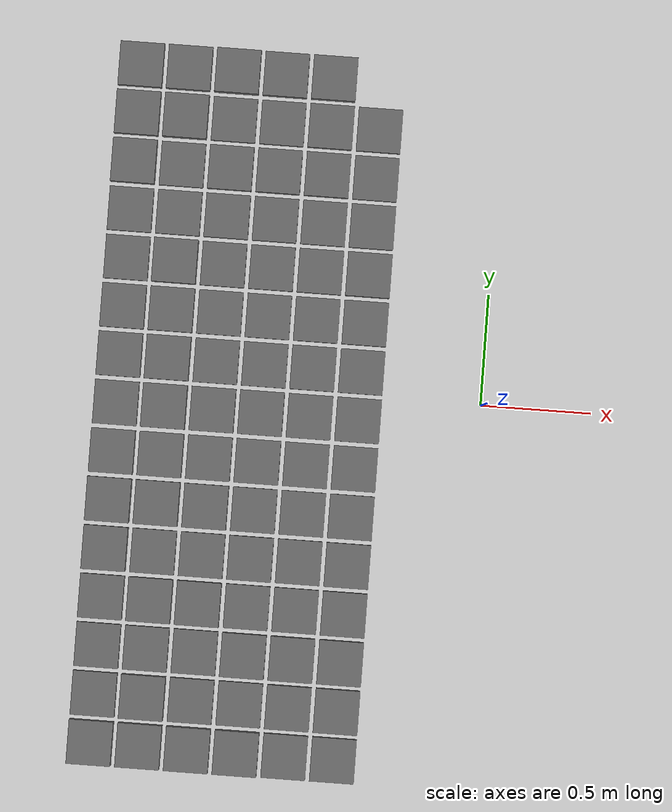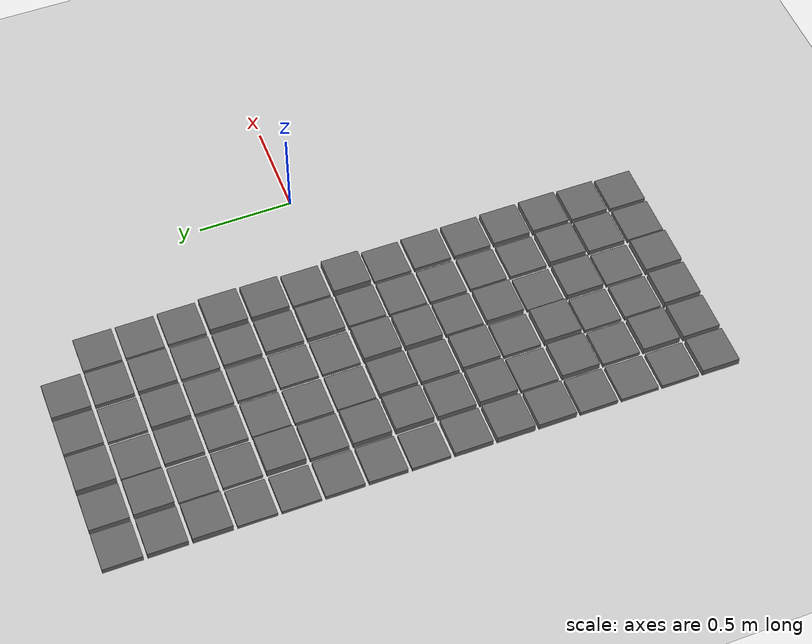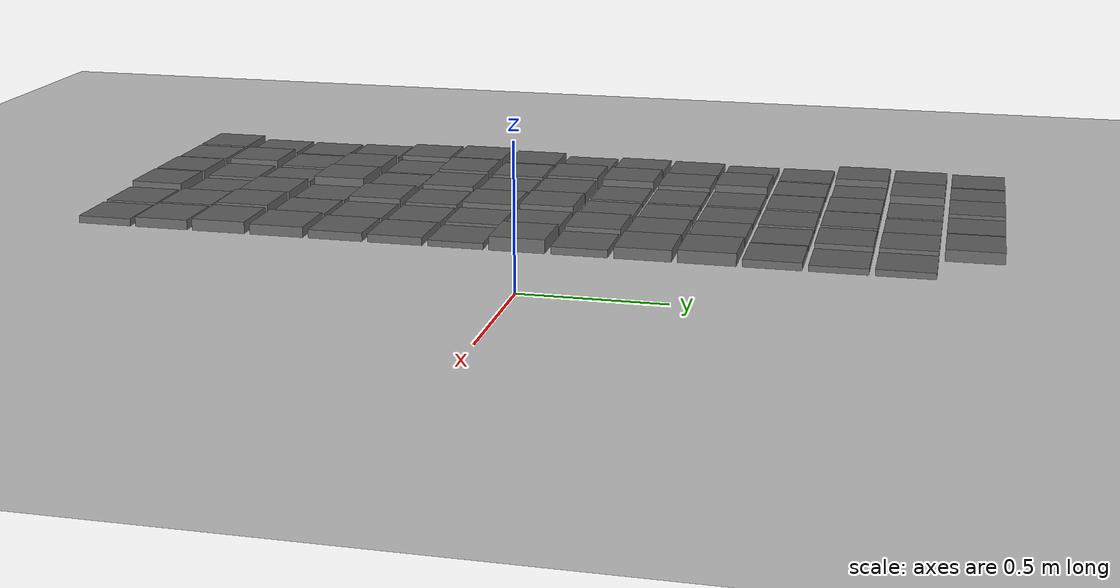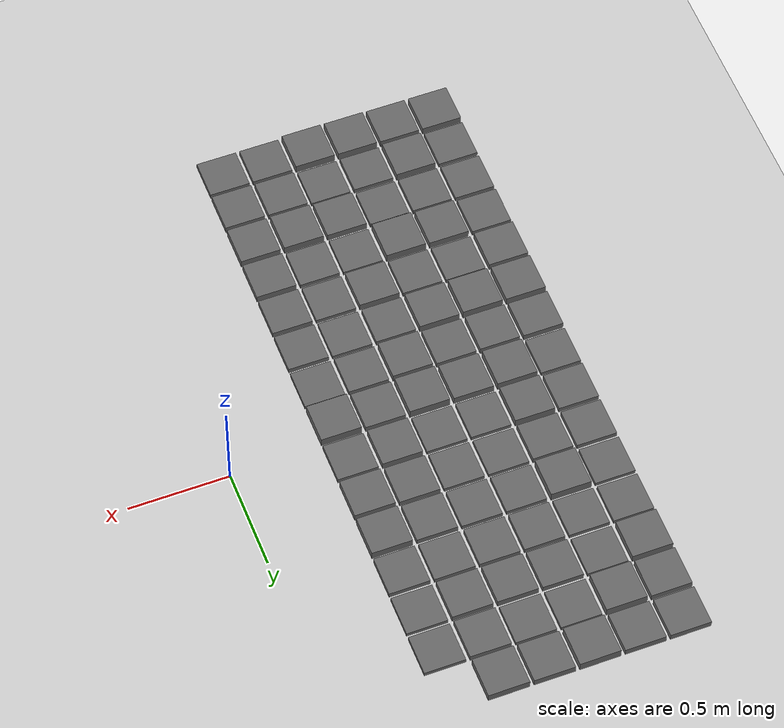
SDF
<sdf version="1.7">
 <world name="default">
  <model name="ground_plane">
   <static>1</static>
   <link name="link">
    <collision name="collision">
     <geometry><plane><normal>0 0 1</normal><size>100 100</size></plane></geometry>
     <surface>
      <contact><collide_bitmask>65535</collide_bitmask></contact>
      <friction><ode><mu>100</mu><mu2>50</mu2></ode></friction>
     </surface>
    </collision>
    <visual name="visual">
     <cast_shadows>0</cast_shadows>
     <geometry><plane><normal>0 0 1</normal><size>100 100</size></plane></geometry>
     <material>
      <script><uri>file://media/materials/scripts/gazebo.material</uri><name>Gazebo/Grey</name></script>
     </material>
    </visual>
   </link>
  </model>
  <model name="terrain_0_0">
   <static>1</static>
   <link name="link">
    <collision name="collision">
     <geometry><box><size>0.2 0.2 0.041049</size></box></geometry>
     <surface><friction><ode><mu>100</mu><mu2>100</mu2></ode></friction></surface>
    </collision>
    <visual name="visual">
     <geometry><box><size>0.2 0.2 0.041049</size></box></geometry>
     <material><ambient>0.4 0.4 0.4 1</ambient></material>
    </visual>
   </link>
   <pose>-1.65 -1.65 0.020525 0 -0 0</pose>
  </model>
  <model name="terrain_0_1">
   <static>1</static>
   <link name="link">
    <collision name="collision">
     <geometry><box><size>0.2 0.2 0.025802</size></box></geometry>
     <surface><friction><ode><mu>100</mu><mu2>100</mu2></ode></friction></surface>
    </collision>
    <visual name="visual">
     <geometry><box><size>0.2 0.2 0.025802</size></box></geometry>
     <material><ambient>0.4 0.4 0.4 1</ambient></material>
    </visual>
   </link>
   <pose>-1.65 -1.43 0.012901 0 -0 0</pose>
  </model>
  <model name="terrain_0_2">
   <static>1</static>
   <link name="link">
    <collision name="collision">
     <geometry><box><size>0.2 0.2 0.024704</size></box></geometry>
     <surface><friction><ode><mu>100</mu><mu2>100</mu2></ode></friction></surface>
    </collision>
    <visual name="visual">
     <geometry><box><size>0.2 0.2 0.024704</size></box></geometry>
     <material><ambient>0.4 0.4 0.4 1</ambient></material>
    </visual>
   </link>
   <pose>-1.65 -1.21 0.012352 0 -0 0</pose>
  </model>
  <model name="terrain_0_3">
   <static>1</static>
   <link name="link">
    <collision name="collision">
     <geometry><box><size>0.2 0.2 0.028086</size></box></geometry>
     <surface><friction><ode><mu>100</mu><mu2>100</mu2></ode></friction></surface>
    </collision>
    <visual name="visual">
     <geometry><box><size>0.2 0.2 0.028086</size></box></geometry>
     <material><ambient>0.4 0.4 0.4 1</ambient></material>
    </visual>
   </link>
   <pose>-1.65 -0.99 0.014043 0 -0 0</pose>
  </model>
  <model name="terrain_0_4">
   <static>1</static>
   <link name="link">
    <collision name="collision">
     <geometry><box><size>0.2 0.2 0.040163</size></box></geometry>
     <surface><friction><ode><mu>100</mu><mu2>100</mu2></ode></friction></surface>
    </collision>
    <visual name="visual">
     <geometry><box><size>0.2 0.2 0.040163</size></box></geometry>
     <material><ambient>0.4 0.4 0.4 1</ambient></material>
    </visual>
   </link>
   <pose>-1.65 -0.77 0.020081 0 -0 0</pose>
  </model>
  <model name="terrain_0_5">
   <static>1</static>
   <link name="link">
    <collision name="collision">
     <geometry><box><size>0.2 0.2 0.045397</size></box></geometry>
     <surface><friction><ode><mu>100</mu><mu2>100</mu2></ode></friction></surface>
    </collision>
    <visual name="visual">
     <geometry><box><size>0.2 0.2 0.045397</size></box></geometry>
     <material><ambient>0.4 0.4 0.4 1</ambient></material>
    </visual>
   </link>
   <pose>-1.65 -0.55 0.022699 0 -0 0</pose>
  </model>
  <model name="terrain_0_6">
   <static>1</static>
   <link name="link">
    <collision name="collision">
     <geometry><box><size>0.2 0.2 0.035923</size></box></geometry>
     <surface><friction><ode><mu>100</mu><mu2>100</mu2></ode></friction></surface>
    </collision>
    <visual name="visual">
     <geometry><box><size>0.2 0.2 0.035923</size></box></geometry>
     <material><ambient>0.4 0.4 0.4 1</ambient></material>
    </visual>
   </link>
   <pose>-1.65 -0.33 0.017961 0 -0 0</pose>
  </model>
  <model name="terrain_0_7">
   <static>1</static>
   <link name="link">
    <collision name="collision">
     <geometry><box><size>0.2 0.2 0.023461</size></box></geometry>
     <surface><friction><ode><mu>100</mu><mu2>100</mu2></ode></friction></surface>
    </collision>
    <visual name="visual">
     <geometry><box><size>0.2 0.2 0.023461</size></box></geometry>
     <material><ambient>0.4 0.4 0.4 1</ambient></material>
    </visual>
   </link>
   <pose>-1.65 -0.11 0.011731 0 -0 0</pose>
  </model>
  <model name="terrain_0_8">
   <static>1</static>
   <link name="link">
    <collision name="collision">
     <geometry><box><size>0.2 0.2 0.029653</size></box></geometry>
     <surface><friction><ode><mu>100</mu><mu2>100</mu2></ode></friction></surface>
    </collision>
    <visual name="visual">
     <geometry><box><size>0.2 0.2 0.029653</size></box></geometry>
     <material><ambient>0.4 0.4 0.4 1</ambient></material>
    </visual>
   </link>
   <pose>-1.65 0.11 0.014827 0 -0 0</pose>
  </model>
  <model name="terrain_0_9">
   <static>1</static>
   <link name="link">
    <collision name="collision">
     <geometry><box><size>0.2 0.2 0.027519</size></box></geometry>
     <surface><friction><ode><mu>100</mu><mu2>100</mu2></ode></friction></surface>
    </collision>
    <visual name="visual">
     <geometry><box><size>0.2 0.2 0.027519</size></box></geometry>
     <material><ambient>0.4 0.4 0.4 1</ambient></material>
    </visual>
   </link>
   <pose>-1.65 0.33 0.013759 0 -0 0</pose>
  </model>
  <model name="terrain_0_10">
   <static>1</static>
   <link name="link">
    <collision name="collision">
     <geometry><box><size>0.2 0.2 0.021272</size></box></geometry>
     <surface><friction><ode><mu>100</mu><mu2>100</mu2></ode></friction></surface>
    </collision>
    <visual name="visual">
     <geometry><box><size>0.2 0.2 0.021272</size></box></geometry>
     <material><ambient>0.4 0.4 0.4 1</ambient></material>
    </visual>
   </link>
   <pose>-1.65 0.55 0.010636 0 -0 0</pose>
  </model>
  <model name="terrain_0_11">
   <static>1</static>
   <link name="link">
    <collision name="collision">
     <geometry><box><size>0.2 0.2 0.022224</size></box></geometry>
     <surface><friction><ode><mu>100</mu><mu2>100</mu2></ode></friction></surface>
    </collision>
    <visual name="visual">
     <geometry><box><size>0.2 0.2 0.022224</size></box></geometry>
     <material><ambient>0.4 0.4 0.4 1</ambient></material>
    </visual>
   </link>
   <pose>-1.65 0.77 0.011112 0 -0 0</pose>
  </model>
  <model name="terrain_0_12">
   <static>1</static>
   <link name="link">
    <collision name="collision">
     <geometry><box><size>0.2 0.2 0.042869</size></box></geometry>
     <surface><friction><ode><mu>100</mu><mu2>100</mu2></ode></friction></surface>
    </collision>
    <visual name="visual">
     <geometry><box><size>0.2 0.2 0.042869</size></box></geometry>
     <material><ambient>0.4 0.4 0.4 1</ambient></material>
    </visual>
   </link>
   <pose>-1.65 0.99 0.021434 0 -0 0</pose>
  </model>
  <model name="terrain_0_13">
   <static>1</static>
   <link name="link">
    <collision name="collision">
     <geometry><box><size>0.2 0.2 0.038145</size></box></geometry>
     <surface><friction><ode><mu>100</mu><mu2>100</mu2></ode></friction></surface>
    </collision>
    <visual name="visual">
     <geometry><box><size>0.2 0.2 0.038145</size></box></geometry>
     <material><ambient>0.4 0.4 0.4 1</ambient></material>
    </visual>
   </link>
   <pose>-1.65 1.21 0.019072 0 -0 0</pose>
  </model>
  <model name="terrain_0_14">
   <static>1</static>
   <link name="link">
    <collision name="collision">
     <geometry><box><size>0.2 0.2 0.033636</size></box></geometry>
     <surface><friction><ode><mu>100</mu><mu2>100</mu2></ode></friction></surface>
    </collision>
    <visual name="visual">
     <geometry><box><size>0.2 0.2 0.033636</size></box></geometry>
     <material><ambient>0.4 0.4 0.4 1</ambient></material>
    </visual>
   </link>
   <pose>-1.65 1.43 0.016818 0 -0 0</pose>
  </model>
  <model name="terrain_1_0">
   <static>1</static>
   <link name="link">
    <collision name="collision">
     <geometry><box><size>0.2 0.2 0.040639</size></box></geometry>
     <surface><friction><ode><mu>100</mu><mu2>100</mu2></ode></friction></surface>
    </collision>
    <visual name="visual">
     <geometry><box><size>0.2 0.2 0.040639</size></box></geometry>
     <material><ambient>0.4 0.4 0.4 1</ambient></material>
    </visual>
   </link>
   <pose>-1.43 -1.65 0.02032 0 -0 0</pose>
  </model>
  <model name="terrain_1_1">
   <static>1</static>
   <link name="link">
    <collision name="collision">
     <geometry><box><size>0.2 0.2 0.044424</size></box></geometry>
     <surface><friction><ode><mu>100</mu><mu2>100</mu2></ode></friction></surface>
    </collision>
    <visual name="visual">
     <geometry><box><size>0.2 0.2 0.044424</size></box></geometry>
     <material><ambient>0.4 0.4 0.4 1</ambient></material>
    </visual>
   </link>
   <pose>-1.43 -1.43 0.022212 0 -0 0</pose>
  </model>
  <model name="terrain_1_2">
   <static>1</static>
   <link name="link">
    <collision name="collision">
     <geometry><box><size>0.2 0.2 0.026957</size></box></geometry>
     <surface><friction><ode><mu>100</mu><mu2>100</mu2></ode></friction></surface>
    </collision>
    <visual name="visual">
     <geometry><box><size>0.2 0.2 0.026957</size></box></geometry>
     <material><ambient>0.4 0.4 0.4 1</ambient></material>
    </visual>
   </link>
   <pose>-1.43 -1.21 0.013478 0 -0 0</pose>
  </model>
  <model name="terrain_1_3">
   <static>1</static>
   <link name="link">
    <collision name="collision">
     <geometry><box><size>0.2 0.2 0.042876</size></box></geometry>
     <surface><friction><ode><mu>100</mu><mu2>100</mu2></ode></friction></surface>
    </collision>
    <visual name="visual">
     <geometry><box><size>0.2 0.2 0.042876</size></box></geometry>
     <material><ambient>0.4 0.4 0.4 1</ambient></material>
    </visual>
   </link>
   <pose>-1.43 -0.99 0.021438 0 -0 0</pose>
  </model>
  <model name="terrain_1_4">
   <static>1</static>
   <link name="link">
    <collision name="collision">
     <geometry><box><size>0.2 0.2 0.025004</size></box></geometry>
     <surface><friction><ode><mu>100</mu><mu2>100</mu2></ode></friction></surface>
    </collision>
    <visual name="visual">
     <geometry><box><size>0.2 0.2 0.025004</size></box></geometry>
     <material><ambient>0.4 0.4 0.4 1</ambient></material>
    </visual>
   </link>
   <pose>-1.43 -0.77 0.012502 0 -0 0</pose>
  </model>
  <model name="terrain_1_5">
   <static>1</static>
   <link name="link">
    <collision name="collision">
     <geometry><box><size>0.2 0.2 0.048702</size></box></geometry>
     <surface><friction><ode><mu>100</mu><mu2>100</mu2></ode></friction></surface>
    </collision>
    <visual name="visual">
     <geometry><box><size>0.2 0.2 0.048702</size></box></geometry>
     <material><ambient>0.4 0.4 0.4 1</ambient></material>
    </visual>
   </link>
   <pose>-1.43 -0.55 0.024351 0 -0 0</pose>
  </model>
  <model name="terrain_1_6">
   <static>1</static>
   <link name="link">
    <collision name="collision">
     <geometry><box><size>0.2 0.2 0.03822</size></box></geometry>
     <surface><friction><ode><mu>100</mu><mu2>100</mu2></ode></friction></surface>
    </collision>
    <visual name="visual">
     <geometry><box><size>0.2 0.2 0.03822</size></box></geometry>
     <material><ambient>0.4 0.4 0.4 1</ambient></material>
    </visual>
   </link>
   <pose>-1.43 -0.33 0.01911 0 -0 0</pose>
  </model>
  <model name="terrain_1_7">
   <static>1</static>
   <link name="link">
    <collision name="collision">
     <geometry><box><size>0.2 0.2 0.047859</size></box></geometry>
     <surface><friction><ode><mu>100</mu><mu2>100</mu2></ode></friction></surface>
    </collision>
    <visual name="visual">
     <geometry><box><size>0.2 0.2 0.047859</size></box></geometry>
     <material><ambient>0.4 0.4 0.4 1</ambient></material>
    </visual>
   </link>
   <pose>-1.43 -0.11 0.02393 0 -0 0</pose>
  </model>
  <model name="terrain_1_8">
   <static>1</static>
   <link name="link">
    <collision name="collision">
     <geometry><box><size>0.2 0.2 0.045117</size></box></geometry>
     <surface><friction><ode><mu>100</mu><mu2>100</mu2></ode></friction></surface>
    </collision>
    <visual name="visual">
     <geometry><box><size>0.2 0.2 0.045117</size></box></geometry>
     <material><ambient>0.4 0.4 0.4 1</ambient></material>
    </visual>
   </link>
   <pose>-1.43 0.11 0.022558 0 -0 0</pose>
  </model>
  <model name="terrain_1_9">
   <static>1</static>
   <link name="link">
    <collision name="collision">
     <geometry><box><size>0.2 0.2 0.033731</size></box></geometry>
     <surface><friction><ode><mu>100</mu><mu2>100</mu2></ode></friction></surface>
    </collision>
    <visual name="visual">
     <geometry><box><size>0.2 0.2 0.033731</size></box></geometry>
     <material><ambient>0.4 0.4 0.4 1</ambient></material>
    </visual>
   </link>
   <pose>-1.43 0.33 0.016866 0 -0 0</pose>
  </model>
  <model name="terrain_1_10">
   <static>1</static>
   <link name="link">
    <collision name="collision">
     <geometry><box><size>0.2 0.2 0.04955</size></box></geometry>
     <surface><friction><ode><mu>100</mu><mu2>100</mu2></ode></friction></surface>
    </collision>
    <visual name="visual">
     <geometry><box><size>0.2 0.2 0.04955</size></box></geometry>
     <material><ambient>0.4 0.4 0.4 1</ambient></material>
    </visual>
   </link>
   <pose>-1.43 0.55 0.024775 0 -0 0</pose>
  </model>
  <model name="terrain_1_11">
   <static>1</static>
   <link name="link">
    <collision name="collision">
     <geometry><box><size>0.2 0.2 0.023592</size></box></geometry>
     <surface><friction><ode><mu>100</mu><mu2>100</mu2></ode></friction></surface>
    </collision>
    <visual name="visual">
     <geometry><box><size>0.2 0.2 0.023592</size></box></geometry>
     <material><ambient>0.4 0.4 0.4 1</ambient></material>
    </visual>
   </link>
   <pose>-1.43 0.77 0.011796 0 -0 0</pose>
  </model>
  <model name="terrain_1_12">
   <static>1</static>
   <link name="link">
    <collision name="collision">
     <geometry><box><size>0.2 0.2 0.020867</size></box></geometry>
     <surface><friction><ode><mu>100</mu><mu2>100</mu2></ode></friction></surface>
    </collision>
    <visual name="visual">
     <geometry><box><size>0.2 0.2 0.020867</size></box></geometry>
     <material><ambient>0.4 0.4 0.4 1</ambient></material>
    </visual>
   </link>
   <pose>-1.43 0.99 0.010434 0 -0 0</pose>
  </model>
  <model name="terrain_1_13">
   <static>1</static>
   <link name="link">
    <collision name="collision">
     <geometry><box><size>0.2 0.2 0.046326</size></box></geometry>
     <surface><friction><ode><mu>100</mu><mu2>100</mu2></ode></friction></surface>
    </collision>
    <visual name="visual">
     <geometry><box><size>0.2 0.2 0.046326</size></box></geometry>
     <material><ambient>0.4 0.4 0.4 1</ambient></material>
    </visual>
   </link>
   <pose>-1.43 1.21 0.023163 0 -0 0</pose>
  </model>
  <model name="terrain_1_14">
   <static>1</static>
   <link name="link">
    <collision name="collision">
     <geometry><box><size>0.2 0.2 0.036003</size></box></geometry>
     <surface><friction><ode><mu>100</mu><mu2>100</mu2></ode></friction></surface>
    </collision>
    <visual name="visual">
     <geometry><box><size>0.2 0.2 0.036003</size></box></geometry>
     <material><ambient>0.4 0.4 0.4 1</ambient></material>
    </visual>
   </link>
   <pose>-1.43 1.43 0.018002 0 -0 0</pose>
  </model>
  <model name="terrain_2_0">
   <static>1</static>
   <link name="link">
    <collision name="collision">
     <geometry><box><size>0.2 0.2 0.044477</size></box></geometry>
     <surface><friction><ode><mu>100</mu><mu2>100</mu2></ode></friction></surface>
    </collision>
    <visual name="visual">
     <geometry><box><size>0.2 0.2 0.044477</size></box></geometry>
     <material><ambient>0.4 0.4 0.4 1</ambient></material>
    </visual>
   </link>
   <pose>-1.21 -1.65 0.022238 0 -0 0</pose>
  </model>
  <model name="terrain_2_1">
   <static>1</static>
   <link name="link">
    <collision name="collision">
     <geometry><box><size>0.2 0.2 0.027828</size></box></geometry>
     <surface><friction><ode><mu>100</mu><mu2>100</mu2></ode></friction></surface>
    </collision>
    <visual name="visual">
     <geometry><box><size>0.2 0.2 0.027828</size></box></geometry>
     <material><ambient>0.4 0.4 0.4 1</ambient></material>
    </visual>
   </link>
   <pose>-1.21 -1.43 0.013914 0 -0 0</pose>
  </model>
  <model name="terrain_2_2">
   <static>1</static>
   <link name="link">
    <collision name="collision">
     <geometry><box><size>0.2 0.2 0.024141</size></box></geometry>
     <surface><friction><ode><mu>100</mu><mu2>100</mu2></ode></friction></surface>
    </collision>
    <visual name="visual">
     <geometry><box><size>0.2 0.2 0.024141</size></box></geometry>
     <material><ambient>0.4 0.4 0.4 1</ambient></material>
    </visual>
   </link>
   <pose>-1.21 -1.21 0.01207 0 -0 0</pose>
  </model>
  <model name="terrain_2_3">
   <static>1</static>
   <link name="link">
    <collision name="collision">
     <geometry><box><size>0.2 0.2 0.04896</size></box></geometry>
     <surface><friction><ode><mu>100</mu><mu2>100</mu2></ode></friction></surface>
    </collision>
    <visual name="visual">
     <geometry><box><size>0.2 0.2 0.04896</size></box></geometry>
     <material><ambient>0.4 0.4 0.4 1</ambient></material>
    </visual>
   </link>
   <pose>-1.21 -0.99 0.02448 0 -0 0</pose>
  </model>
  <model name="terrain_2_4">
   <static>1</static>
   <link name="link">
    <collision name="collision">
     <geometry><box><size>0.2 0.2 0.026443</size></box></geometry>
     <surface><friction><ode><mu>100</mu><mu2>100</mu2></ode></friction></surface>
    </collision>
    <visual name="visual">
     <geometry><box><size>0.2 0.2 0.026443</size></box></geometry>
     <material><ambient>0.4 0.4 0.4 1</ambient></material>
    </visual>
   </link>
   <pose>-1.21 -0.77 0.013222 0 -0 0</pose>
  </model>
  <model name="terrain_2_5">
   <static>1</static>
   <link name="link">
    <collision name="collision">
     <geometry><box><size>0.2 0.2 0.042426</size></box></geometry>
     <surface><friction><ode><mu>100</mu><mu2>100</mu2></ode></friction></surface>
    </collision>
    <visual name="visual">
     <geometry><box><size>0.2 0.2 0.042426</size></box></geometry>
     <material><ambient>0.4 0.4 0.4 1</ambient></material>
    </visual>
   </link>
   <pose>-1.21 -0.55 0.021213 0 -0 0</pose>
  </model>
  <model name="terrain_2_6">
   <static>1</static>
   <link name="link">
    <collision name="collision">
     <geometry><box><size>0.2 0.2 0.032356</size></box></geometry>
     <surface><friction><ode><mu>100</mu><mu2>100</mu2></ode></friction></surface>
    </collision>
    <visual name="visual">
     <geometry><box><size>0.2 0.2 0.032356</size></box></geometry>
     <material><ambient>0.4 0.4 0.4 1</ambient></material>
    </visual>
   </link>
   <pose>-1.21 -0.33 0.016178 0 -0 0</pose>
  </model>
  <model name="terrain_2_7">
   <static>1</static>
   <link name="link">
    <collision name="collision">
     <geometry><box><size>0.2 0.2 0.042514</size></box></geometry>
     <surface><friction><ode><mu>100</mu><mu2>100</mu2></ode></friction></surface>
    </collision>
    <visual name="visual">
     <geometry><box><size>0.2 0.2 0.042514</size></box></geometry>
     <material><ambient>0.4 0.4 0.4 1</ambient></material>
    </visual>
   </link>
   <pose>-1.21 -0.11 0.021257 0 -0 0</pose>
  </model>
  <model name="terrain_2_8">
   <static>1</static>
   <link name="link">
    <collision name="collision">
     <geometry><box><size>0.2 0.2 0.023404</size></box></geometry>
     <surface><friction><ode><mu>100</mu><mu2>100</mu2></ode></friction></surface>
    </collision>
    <visual name="visual">
     <geometry><box><size>0.2 0.2 0.023404</size></box></geometry>
     <material><ambient>0.4 0.4 0.4 1</ambient></material>
    </visual>
   </link>
   <pose>-1.21 0.11 0.011702 0 -0 0</pose>
  </model>
  <model name="terrain_2_9">
   <static>1</static>
   <link name="link">
    <collision name="collision">
     <geometry><box><size>0.2 0.2 0.022468</size></box></geometry>
     <surface><friction><ode><mu>100</mu><mu2>100</mu2></ode></friction></surface>
    </collision>
    <visual name="visual">
     <geometry><box><size>0.2 0.2 0.022468</size></box></geometry>
     <material><ambient>0.4 0.4 0.4 1</ambient></material>
    </visual>
   </link>
   <pose>-1.21 0.33 0.011234 0 -0 0</pose>
  </model>
  <model name="terrain_2_10">
   <static>1</static>
   <link name="link">
    <collision name="collision">
     <geometry><box><size>0.2 0.2 0.025677</size></box></geometry>
     <surface><friction><ode><mu>100</mu><mu2>100</mu2></ode></friction></surface>
    </collision>
    <visual name="visual">
     <geometry><box><size>0.2 0.2 0.025677</size></box></geometry>
     <material><ambient>0.4 0.4 0.4 1</ambient></material>
    </visual>
   </link>
   <pose>-1.21 0.55 0.012838 0 -0 0</pose>
  </model>
  <model name="terrain_2_11">
   <static>1</static>
   <link name="link">
    <collision name="collision">
     <geometry><box><size>0.2 0.2 0.027745</size></box></geometry>
     <surface><friction><ode><mu>100</mu><mu2>100</mu2></ode></friction></surface>
    </collision>
    <visual name="visual">
     <geometry><box><size>0.2 0.2 0.027745</size></box></geometry>
     <material><ambient>0.4 0.4 0.4 1</ambient></material>
    </visual>
   </link>
   <pose>-1.21 0.77 0.013872 0 -0 0</pose>
  </model>
  <model name="terrain_2_12">
   <static>1</static>
   <link name="link">
    <collision name="collision">
     <geometry><box><size>0.2 0.2 0.032543</size></box></geometry>
     <surface><friction><ode><mu>100</mu><mu2>100</mu2></ode></friction></surface>
    </collision>
    <visual name="visual">
     <geometry><box><size>0.2 0.2 0.032543</size></box></geometry>
     <material><ambient>0.4 0.4 0.4 1</ambient></material>
    </visual>
   </link>
   <pose>-1.21 0.99 0.016272 0 -0 0</pose>
  </model>
  <model name="terrain_2_13">
   <static>1</static>
   <link name="link">
    <collision name="collision">
     <geometry><box><size>0.2 0.2 0.021683</size></box></geometry>
     <surface><friction><ode><mu>100</mu><mu2>100</mu2></ode></friction></surface>
    </collision>
    <visual name="visual">
     <geometry><box><size>0.2 0.2 0.021683</size></box></geometry>
     <material><ambient>0.4 0.4 0.4 1</ambient></material>
    </visual>
   </link>
   <pose>-1.21 1.21 0.010842 0 -0 0</pose>
  </model>
  <model name="terrain_2_14">
   <static>1</static>
   <link name="link">
    <collision name="collision">
     <geometry><box><size>0.2 0.2 0.047231</size></box></geometry>
     <surface><friction><ode><mu>100</mu><mu2>100</mu2></ode></friction></surface>
    </collision>
    <visual name="visual">
     <geometry><box><size>0.2 0.2 0.047231</size></box></geometry>
     <material><ambient>0.4 0.4 0.4 1</ambient></material>
    </visual>
   </link>
   <pose>-1.21 1.43 0.023615 0 -0 0</pose>
  </model>
  <model name="terrain_3_0">
   <static>1</static>
   <link name="link">
    <collision name="collision">
     <geometry><box><size>0.2 0.2 0.046595</size></box></geometry>
     <surface><friction><ode><mu>100</mu><mu2>100</mu2></ode></friction></surface>
    </collision>
    <visual name="visual">
     <geometry><box><size>0.2 0.2 0.046595</size></box></geometry>
     <material><ambient>0.4 0.4 0.4 1</ambient></material>
    </visual>
   </link>
   <pose>-0.99 -1.65 0.023297 0 -0 0</pose>
  </model>
  <model name="terrain_3_1">
   <static>1</static>
   <link name="link">
    <collision name="collision">
     <geometry><box><size>0.2 0.2 0.021769</size></box></geometry>
     <surface><friction><ode><mu>100</mu><mu2>100</mu2></ode></friction></surface>
    </collision>
    <visual name="visual">
     <geometry><box><size>0.2 0.2 0.021769</size></box></geometry>
     <material><ambient>0.4 0.4 0.4 1</ambient></material>
    </visual>
   </link>
   <pose>-0.99 -1.43 0.010884 0 -0 0</pose>
  </model>
  <model name="terrain_3_2">
   <static>1</static>
   <link name="link">
    <collision name="collision">
     <geometry><box><size>0.2 0.2 0.040794</size></box></geometry>
     <surface><friction><ode><mu>100</mu><mu2>100</mu2></ode></friction></surface>
    </collision>
    <visual name="visual">
     <geometry><box><size>0.2 0.2 0.040794</size></box></geometry>
     <material><ambient>0.4 0.4 0.4 1</ambient></material>
    </visual>
   </link>
   <pose>-0.99 -1.21 0.020397 0 -0 0</pose>
  </model>
  <model name="terrain_3_3">
   <static>1</static>
   <link name="link">
    <collision name="collision">
     <geometry><box><size>0.2 0.2 0.02101</size></box></geometry>
     <surface><friction><ode><mu>100</mu><mu2>100</mu2></ode></friction></surface>
    </collision>
    <visual name="visual">
     <geometry><box><size>0.2 0.2 0.02101</size></box></geometry>
     <material><ambient>0.4 0.4 0.4 1</ambient></material>
    </visual>
   </link>
   <pose>-0.99 -0.99 0.010505 0 -0 0</pose>
  </model>
  <model name="terrain_3_4">
   <static>1</static>
   <link name="link">
    <collision name="collision">
     <geometry><box><size>0.2 0.2 0.039327</size></box></geometry>
     <surface><friction><ode><mu>100</mu><mu2>100</mu2></ode></friction></surface>
    </collision>
    <visual name="visual">
     <geometry><box><size>0.2 0.2 0.039327</size></box></geometry>
     <material><ambient>0.4 0.4 0.4 1</ambient></material>
    </visual>
   </link>
   <pose>-0.99 -0.77 0.019663 0 -0 0</pose>
  </model>
  <model name="terrain_3_5">
   <static>1</static>
   <link name="link">
    <collision name="collision">
     <geometry><box><size>0.2 0.2 0.029586</size></box></geometry>
     <surface><friction><ode><mu>100</mu><mu2>100</mu2></ode></friction></surface>
    </collision>
    <visual name="visual">
     <geometry><box><size>0.2 0.2 0.029586</size></box></geometry>
     <material><ambient>0.4 0.4 0.4 1</ambient></material>
    </visual>
   </link>
   <pose>-0.99 -0.55 0.014793 0 -0 0</pose>
  </model>
  <model name="terrain_3_6">
   <static>1</static>
   <link name="link">
    <collision name="collision">
     <geometry><box><size>0.2 0.2 0.042922</size></box></geometry>
     <surface><friction><ode><mu>100</mu><mu2>100</mu2></ode></friction></surface>
    </collision>
    <visual name="visual">
     <geometry><box><size>0.2 0.2 0.042922</size></box></geometry>
     <material><ambient>0.4 0.4 0.4 1</ambient></material>
    </visual>
   </link>
   <pose>-0.99 -0.33 0.021461 0 -0 0</pose>
  </model>
  <model name="terrain_3_7">
   <static>1</static>
   <link name="link">
    <collision name="collision">
     <geometry><box><size>0.2 0.2 0.0495</size></box></geometry>
     <surface><friction><ode><mu>100</mu><mu2>100</mu2></ode></friction></surface>
    </collision>
    <visual name="visual">
     <geometry><box><size>0.2 0.2 0.0495</size></box></geometry>
     <material><ambient>0.4 0.4 0.4 1</ambient></material>
    </visual>
   </link>
   <pose>-0.99 -0.11 0.02475 0 -0 0</pose>
  </model>
  <model name="terrain_3_8">
   <static>1</static>
   <link name="link">
    <collision name="collision">
     <geometry><box><size>0.2 0.2 0.022192</size></box></geometry>
     <surface><friction><ode><mu>100</mu><mu2>100</mu2></ode></friction></surface>
    </collision>
    <visual name="visual">
     <geometry><box><size>0.2 0.2 0.022192</size></box></geometry>
     <material><ambient>0.4 0.4 0.4 1</ambient></material>
    </visual>
   </link>
   <pose>-0.99 0.11 0.011096 0 -0 0</pose>
  </model>
  <model name="terrain_3_9">
   <static>1</static>
   <link name="link">
    <collision name="collision">
     <geometry><box><size>0.2 0.2 0.023127</size></box></geometry>
     <surface><friction><ode><mu>100</mu><mu2>100</mu2></ode></friction></surface>
    </collision>
    <visual name="visual">
     <geometry><box><size>0.2 0.2 0.023127</size></box></geometry>
     <material><ambient>0.4 0.4 0.4 1</ambient></material>
    </visual>
   </link>
   <pose>-0.99 0.33 0.011563 0 -0 0</pose>
  </model>
  <model name="terrain_3_10">
   <static>1</static>
   <link name="link">
    <collision name="collision">
     <geometry><box><size>0.2 0.2 0.025767</size></box></geometry>
     <surface><friction><ode><mu>100</mu><mu2>100</mu2></ode></friction></surface>
    </collision>
    <visual name="visual">
     <geometry><box><size>0.2 0.2 0.025767</size></box></geometry>
     <material><ambient>0.4 0.4 0.4 1</ambient></material>
    </visual>
   </link>
   <pose>-0.99 0.55 0.012884 0 -0 0</pose>
  </model>
  <model name="terrain_3_11">
   <static>1</static>
   <link name="link">
    <collision name="collision">
     <geometry><box><size>0.2 0.2 0.027007</size></box></geometry>
     <surface><friction><ode><mu>100</mu><mu2>100</mu2></ode></friction></surface>
    </collision>
    <visual name="visual">
     <geometry><box><size>0.2 0.2 0.027007</size></box></geometry>
     <material><ambient>0.4 0.4 0.4 1</ambient></material>
    </visual>
   </link>
   <pose>-0.99 0.77 0.013503 0 -0 0</pose>
  </model>
  <model name="terrain_3_12">
   <static>1</static>
   <link name="link">
    <collision name="collision">
     <geometry><box><size>0.2 0.2 0.037068</size></box></geometry>
     <surface><friction><ode><mu>100</mu><mu2>100</mu2></ode></friction></surface>
    </collision>
    <visual name="visual">
     <geometry><box><size>0.2 0.2 0.037068</size></box></geometry>
     <material><ambient>0.4 0.4 0.4 1</ambient></material>
    </visual>
   </link>
   <pose>-0.99 0.99 0.018534 0 -0 0</pose>
  </model>
  <model name="terrain_3_13">
   <static>1</static>
   <link name="link">
    <collision name="collision">
     <geometry><box><size>0.2 0.2 0.022132</size></box></geometry>
     <surface><friction><ode><mu>100</mu><mu2>100</mu2></ode></friction></surface>
    </collision>
    <visual name="visual">
     <geometry><box><size>0.2 0.2 0.022132</size></box></geometry>
     <material><ambient>0.4 0.4 0.4 1</ambient></material>
    </visual>
   </link>
   <pose>-0.99 1.21 0.011066 0 -0 0</pose>
  </model>
  <model name="terrain_3_14">
   <static>1</static>
   <link name="link">
    <collision name="collision">
     <geometry><box><size>0.2 0.2 0.038272</size></box></geometry>
     <surface><friction><ode><mu>100</mu><mu2>100</mu2></ode></friction></surface>
    </collision>
    <visual name="visual">
     <geometry><box><size>0.2 0.2 0.038272</size></box></geometry>
     <material><ambient>0.4 0.4 0.4 1</ambient></material>
    </visual>
   </link>
   <pose>-0.99 1.43 0.019136 0 -0 0</pose>
  </model>
  <model name="terrain_4_0">
   <static>1</static>
   <link name="link">
    <collision name="collision">
     <geometry><box><size>0.2 0.2 0.02844</size></box></geometry>
     <surface><friction><ode><mu>100</mu><mu2>100</mu2></ode></friction></surface>
    </collision>
    <visual name="visual">
     <geometry><box><size>0.2 0.2 0.02844</size></box></geometry>
     <material><ambient>0.4 0.4 0.4 1</ambient></material>
    </visual>
   </link>
   <pose>-0.77 -1.65 0.01422 0 -0 0</pose>
  </model>
  <model name="terrain_4_1">
   <static>1</static>
   <link name="link">
    <collision name="collision">
     <geometry><box><size>0.2 0.2 0.034988</size></box></geometry>
     <surface><friction><ode><mu>100</mu><mu2>100</mu2></ode></friction></surface>
    </collision>
    <visual name="visual">
     <geometry><box><size>0.2 0.2 0.034988</size></box></geometry>
     <material><ambient>0.4 0.4 0.4 1</ambient></material>
    </visual>
   </link>
   <pose>-0.77 -1.43 0.017494 0 -0 0</pose>
  </model>
  <model name="terrain_4_2">
   <static>1</static>
   <link name="link">
    <collision name="collision">
     <geometry><box><size>0.2 0.2 0.046463</size></box></geometry>
     <surface><friction><ode><mu>100</mu><mu2>100</mu2></ode></friction></surface>
    </collision>
    <visual name="visual">
     <geometry><box><size>0.2 0.2 0.046463</size></box></geometry>
     <material><ambient>0.4 0.4 0.4 1</ambient></material>
    </visual>
   </link>
   <pose>-0.77 -1.21 0.023232 0 -0 0</pose>
  </model>
  <model name="terrain_4_3">
   <static>1</static>
   <link name="link">
    <collision name="collision">
     <geometry><box><size>0.2 0.2 0.026248</size></box></geometry>
     <surface><friction><ode><mu>100</mu><mu2>100</mu2></ode></friction></surface>
    </collision>
    <visual name="visual">
     <geometry><box><size>0.2 0.2 0.026248</size></box></geometry>
     <material><ambient>0.4 0.4 0.4 1</ambient></material>
    </visual>
   </link>
   <pose>-0.77 -0.99 0.013124 0 -0 0</pose>
  </model>
  <model name="terrain_4_4">
   <static>1</static>
   <link name="link">
    <collision name="collision">
     <geometry><box><size>0.2 0.2 0.024934</size></box></geometry>
     <surface><friction><ode><mu>100</mu><mu2>100</mu2></ode></friction></surface>
    </collision>
    <visual name="visual">
     <geometry><box><size>0.2 0.2 0.024934</size></box></geometry>
     <material><ambient>0.4 0.4 0.4 1</ambient></material>
    </visual>
   </link>
   <pose>-0.77 -0.77 0.012467 0 -0 0</pose>
  </model>
  <model name="terrain_4_5">
   <static>1</static>
   <link name="link">
    <collision name="collision">
     <geometry><box><size>0.2 0.2 0.023416</size></box></geometry>
     <surface><friction><ode><mu>100</mu><mu2>100</mu2></ode></friction></surface>
    </collision>
    <visual name="visual">
     <geometry><box><size>0.2 0.2 0.023416</size></box></geometry>
     <material><ambient>0.4 0.4 0.4 1</ambient></material>
    </visual>
   </link>
   <pose>-0.77 -0.55 0.011708 0 -0 0</pose>
  </model>
  <model name="terrain_4_6">
   <static>1</static>
   <link name="link">
    <collision name="collision">
     <geometry><box><size>0.2 0.2 0.027637</size></box></geometry>
     <surface><friction><ode><mu>100</mu><mu2>100</mu2></ode></friction></surface>
    </collision>
    <visual name="visual">
     <geometry><box><size>0.2 0.2 0.027637</size></box></geometry>
     <material><ambient>0.4 0.4 0.4 1</ambient></material>
    </visual>
   </link>
   <pose>-0.77 -0.33 0.013818 0 -0 0</pose>
  </model>
  <model name="terrain_4_7">
   <static>1</static>
   <link name="link">
    <collision name="collision">
     <geometry><box><size>0.2 0.2 0.035057</size></box></geometry>
     <surface><friction><ode><mu>100</mu><mu2>100</mu2></ode></friction></surface>
    </collision>
    <visual name="visual">
     <geometry><box><size>0.2 0.2 0.035057</size></box></geometry>
     <material><ambient>0.4 0.4 0.4 1</ambient></material>
    </visual>
   </link>
   <pose>-0.77 -0.11 0.017528 0 -0 0</pose>
  </model>
  <model name="terrain_4_8">
   <static>1</static>
   <link name="link">
    <collision name="collision">
     <geometry><box><size>0.2 0.2 0.039062</size></box></geometry>
     <surface><friction><ode><mu>100</mu><mu2>100</mu2></ode></friction></surface>
    </collision>
    <visual name="visual">
     <geometry><box><size>0.2 0.2 0.039062</size></box></geometry>
     <material><ambient>0.4 0.4 0.4 1</ambient></material>
    </visual>
   </link>
   <pose>-0.77 0.11 0.019531 0 -0 0</pose>
  </model>
  <model name="terrain_4_9">
   <static>1</static>
   <link name="link">
    <collision name="collision">
     <geometry><box><size>0.2 0.2 0.033317</size></box></geometry>
     <surface><friction><ode><mu>100</mu><mu2>100</mu2></ode></friction></surface>
    </collision>
    <visual name="visual">
     <geometry><box><size>0.2 0.2 0.033317</size></box></geometry>
     <material><ambient>0.4 0.4 0.4 1</ambient></material>
    </visual>
   </link>
   <pose>-0.77 0.33 0.016658 0 -0 0</pose>
  </model>
  <model name="terrain_4_10">
   <static>1</static>
   <link name="link">
    <collision name="collision">
     <geometry><box><size>0.2 0.2 0.032623</size></box></geometry>
     <surface><friction><ode><mu>100</mu><mu2>100</mu2></ode></friction></surface>
    </collision>
    <visual name="visual">
     <geometry><box><size>0.2 0.2 0.032623</size></box></geometry>
     <material><ambient>0.4 0.4 0.4 1</ambient></material>
    </visual>
   </link>
   <pose>-0.77 0.55 0.016312 0 -0 0</pose>
  </model>
  <model name="terrain_4_11">
   <static>1</static>
   <link name="link">
    <collision name="collision">
     <geometry><box><size>0.2 0.2 0.024051</size></box></geometry>
     <surface><friction><ode><mu>100</mu><mu2>100</mu2></ode></friction></surface>
    </collision>
    <visual name="visual">
     <geometry><box><size>0.2 0.2 0.024051</size></box></geometry>
     <material><ambient>0.4 0.4 0.4 1</ambient></material>
    </visual>
   </link>
   <pose>-0.77 0.77 0.012026 0 -0 0</pose>
  </model>
  <model name="terrain_4_12">
   <static>1</static>
   <link name="link">
    <collision name="collision">
     <geometry><box><size>0.2 0.2 0.035316</size></box></geometry>
     <surface><friction><ode><mu>100</mu><mu2>100</mu2></ode></friction></surface>
    </collision>
    <visual name="visual">
     <geometry><box><size>0.2 0.2 0.035316</size></box></geometry>
     <material><ambient>0.4 0.4 0.4 1</ambient></material>
    </visual>
   </link>
   <pose>-0.77 0.99 0.017658 0 -0 0</pose>
  </model>
  <model name="terrain_4_13">
   <static>1</static>
   <link name="link">
    <collision name="collision">
     <geometry><box><size>0.2 0.2 0.03245</size></box></geometry>
     <surface><friction><ode><mu>100</mu><mu2>100</mu2></ode></friction></surface>
    </collision>
    <visual name="visual">
     <geometry><box><size>0.2 0.2 0.03245</size></box></geometry>
     <material><ambient>0.4 0.4 0.4 1</ambient></material>
    </visual>
   </link>
   <pose>-0.77 1.21 0.016225 0 -0 0</pose>
  </model>
  <model name="terrain_4_14">
   <static>1</static>
   <link name="link">
    <collision name="collision">
     <geometry><box><size>0.2 0.2 0.041599</size></box></geometry>
     <surface><friction><ode><mu>100</mu><mu2>100</mu2></ode></friction></surface>
    </collision>
    <visual name="visual">
     <geometry><box><size>0.2 0.2 0.041599</size></box></geometry>
     <material><ambient>0.4 0.4 0.4 1</ambient></material>
    </visual>
   </link>
   <pose>-0.77 1.43 0.020799 0 -0 0</pose>
  </model>
  <model name="terrain_5_0">
   <static>1</static>
   <link name="link">
    <collision name="collision">
     <geometry><box><size>0.2 0.2 0.027119</size></box></geometry>
     <surface><friction><ode><mu>100</mu><mu2>100</mu2></ode></friction></surface>
    </collision>
    <visual name="visual">
     <geometry><box><size>0.2 0.2 0.027119</size></box></geometry>
     <material><ambient>0.4 0.4 0.4 1</ambient></material>
    </visual>
   </link>
   <pose>-0.55 -1.65 0.01356 0 -0 0</pose>
  </model>
  <model name="terrain_5_1">
   <static>1</static>
   <link name="link">
    <collision name="collision">
     <geometry><box><size>0.2 0.2 0.036069</size></box></geometry>
     <surface><friction><ode><mu>100</mu><mu2>100</mu2></ode></friction></surface>
    </collision>
    <visual name="visual">
     <geometry><box><size>0.2 0.2 0.036069</size></box></geometry>
     <material><ambient>0.4 0.4 0.4 1</ambient></material>
    </visual>
   </link>
   <pose>-0.55 -1.43 0.018034 0 -0 0</pose>
  </model>
  <model name="terrain_5_2">
   <static>1</static>
   <link name="link">
    <collision name="collision">
     <geometry><box><size>0.2 0.2 0.042801</size></box></geometry>
     <surface><friction><ode><mu>100</mu><mu2>100</mu2></ode></friction></surface>
    </collision>
    <visual name="visual">
     <geometry><box><size>0.2 0.2 0.042801</size></box></geometry>
     <material><ambient>0.4 0.4 0.4 1</ambient></material>
    </visual>
   </link>
   <pose>-0.55 -1.21 0.021401 0 -0 0</pose>
  </model>
  <model name="terrain_5_3">
   <static>1</static>
   <link name="link">
    <collision name="collision">
     <geometry><box><size>0.2 0.2 0.037924</size></box></geometry>
     <surface><friction><ode><mu>100</mu><mu2>100</mu2></ode></friction></surface>
    </collision>
    <visual name="visual">
     <geometry><box><size>0.2 0.2 0.037924</size></box></geometry>
     <material><ambient>0.4 0.4 0.4 1</ambient></material>
    </visual>
   </link>
   <pose>-0.55 -0.99 0.018962 0 -0 0</pose>
  </model>
  <model name="terrain_5_4">
   <static>1</static>
   <link name="link">
    <collision name="collision">
     <geometry><box><size>0.2 0.2 0.03079</size></box></geometry>
     <surface><friction><ode><mu>100</mu><mu2>100</mu2></ode></friction></surface>
    </collision>
    <visual name="visual">
     <geometry><box><size>0.2 0.2 0.03079</size></box></geometry>
     <material><ambient>0.4 0.4 0.4 1</ambient></material>
    </visual>
   </link>
   <pose>-0.55 -0.77 0.015395 0 -0 0</pose>
  </model>
  <model name="terrain_5_5">
   <static>1</static>
   <link name="link">
    <collision name="collision">
     <geometry><box><size>0.2 0.2 0.029083</size></box></geometry>
     <surface><friction><ode><mu>100</mu><mu2>100</mu2></ode></friction></surface>
    </collision>
    <visual name="visual">
     <geometry><box><size>0.2 0.2 0.029083</size></box></geometry>
     <material><ambient>0.4 0.4 0.4 1</ambient></material>
    </visual>
   </link>
   <pose>-0.55 -0.55 0.014541 0 -0 0</pose>
  </model>
  <model name="terrain_5_6">
   <static>1</static>
   <link name="link">
    <collision name="collision">
     <geometry><box><size>0.2 0.2 0.022104</size></box></geometry>
     <surface><friction><ode><mu>100</mu><mu2>100</mu2></ode></friction></surface>
    </collision>
    <visual name="visual">
     <geometry><box><size>0.2 0.2 0.022104</size></box></geometry>
     <material><ambient>0.4 0.4 0.4 1</ambient></material>
    </visual>
   </link>
   <pose>-0.55 -0.33 0.011052 0 -0 0</pose>
  </model>
  <model name="terrain_5_7">
   <static>1</static>
   <link name="link">
    <collision name="collision">
     <geometry><box><size>0.2 0.2 0.049674</size></box></geometry>
     <surface><friction><ode><mu>100</mu><mu2>100</mu2></ode></friction></surface>
    </collision>
    <visual name="visual">
     <geometry><box><size>0.2 0.2 0.049674</size></box></geometry>
     <material><ambient>0.4 0.4 0.4 1</ambient></material>
    </visual>
   </link>
   <pose>-0.55 -0.11 0.024837 0 -0 0</pose>
  </model>
  <model name="terrain_5_8">
   <static>1</static>
   <link name="link">
    <collision name="collision">
     <geometry><box><size>0.2 0.2 0.027275</size></box></geometry>
     <surface><friction><ode><mu>100</mu><mu2>100</mu2></ode></friction></surface>
    </collision>
    <visual name="visual">
     <geometry><box><size>0.2 0.2 0.027275</size></box></geometry>
     <material><ambient>0.4 0.4 0.4 1</ambient></material>
    </visual>
   </link>
   <pose>-0.55 0.11 0.013638 0 -0 0</pose>
  </model>
  <model name="terrain_5_9">
   <static>1</static>
   <link name="link">
    <collision name="collision">
     <geometry><box><size>0.2 0.2 0.041329</size></box></geometry>
     <surface><friction><ode><mu>100</mu><mu2>100</mu2></ode></friction></surface>
    </collision>
    <visual name="visual">
     <geometry><box><size>0.2 0.2 0.041329</size></box></geometry>
     <material><ambient>0.4 0.4 0.4 1</ambient></material>
    </visual>
   </link>
   <pose>-0.55 0.33 0.020664 0 -0 0</pose>
  </model>
  <model name="terrain_5_10">
   <static>1</static>
   <link name="link">
    <collision name="collision">
     <geometry><box><size>0.2 0.2 0.045226</size></box></geometry>
     <surface><friction><ode><mu>100</mu><mu2>100</mu2></ode></friction></surface>
    </collision>
    <visual name="visual">
     <geometry><box><size>0.2 0.2 0.045226</size></box></geometry>
     <material><ambient>0.4 0.4 0.4 1</ambient></material>
    </visual>
   </link>
   <pose>-0.55 0.55 0.022613 0 -0 0</pose>
  </model>
  <model name="terrain_5_11">
   <static>1</static>
   <link name="link">
    <collision name="collision">
     <geometry><box><size>0.2 0.2 0.027548</size></box></geometry>
     <surface><friction><ode><mu>100</mu><mu2>100</mu2></ode></friction></surface>
    </collision>
    <visual name="visual">
     <geometry><box><size>0.2 0.2 0.027548</size></box></geometry>
     <material><ambient>0.4 0.4 0.4 1</ambient></material>
    </visual>
   </link>
   <pose>-0.55 0.77 0.013774 0 -0 0</pose>
  </model>
  <model name="terrain_5_12">
   <static>1</static>
   <link name="link">
    <collision name="collision">
     <geometry><box><size>0.2 0.2 0.021543</size></box></geometry>
     <surface><friction><ode><mu>100</mu><mu2>100</mu2></ode></friction></surface>
    </collision>
    <visual name="visual">
     <geometry><box><size>0.2 0.2 0.021543</size></box></geometry>
     <material><ambient>0.4 0.4 0.4 1</ambient></material>
    </visual>
   </link>
   <pose>-0.55 0.99 0.010771 0 -0 0</pose>
  </model>
  <model name="terrain_5_13">
   <static>1</static>
   <link name="link">
    <collision name="collision">
     <geometry><box><size>0.2 0.2 0.022719</size></box></geometry>
     <surface><friction><ode><mu>100</mu><mu2>100</mu2></ode></friction></surface>
    </collision>
    <visual name="visual">
     <geometry><box><size>0.2 0.2 0.022719</size></box></geometry>
     <material><ambient>0.4 0.4 0.4 1</ambient></material>
    </visual>
   </link>
   <pose>-0.55 1.21 0.01136 0 -0 0</pose>
  </model>
 </world>
</sdf>
